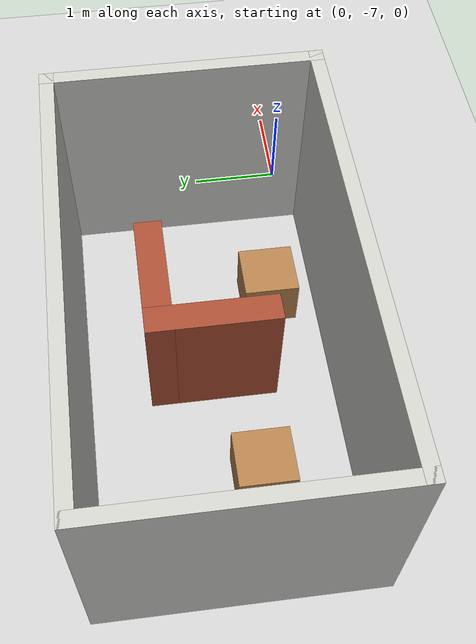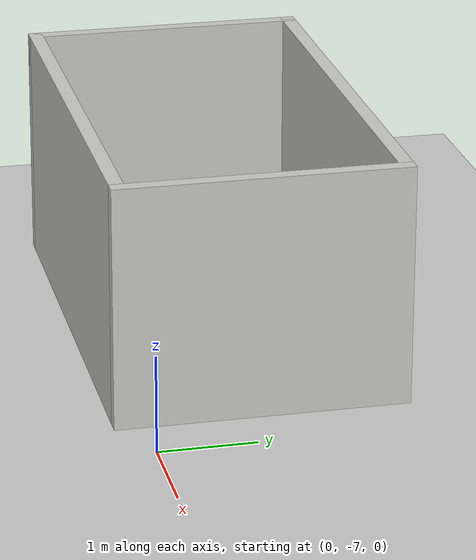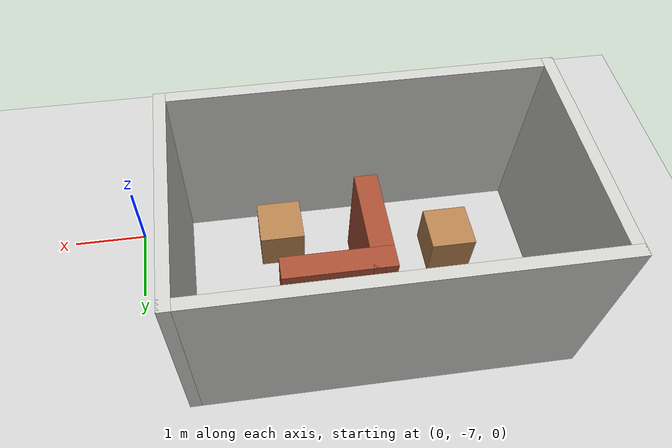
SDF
<sdf version="1.6">
 <world name="default">
  <light name="sun" type="directional">
   <pose>0 0 10 0 -0 0</pose>
   <diffuse>0.8 0.8 0.8 1</diffuse>
   <specular>0.2 0.2 0.2 1</specular>
   <attenuation>
    <range>1000</range>
    <constant>0.9</constant>
    <linear>0.01</linear>
    <quadratic>0.001</quadratic>
   </attenuation>
   <direction>-0.5 0.1 -0.9</direction>
  </light>
  <model name="ground_plane">
   <static>1</static>
   <link name="link">
    <collision name="collision">
     <geometry><plane><normal>0 0 1</normal><size>100 100</size></plane></geometry>
     <surface><friction><ode><mu>100</mu><mu2>50</mu2></ode></friction></surface>
    </collision>
    <visual name="visual">
     <cast_shadows>0</cast_shadows>
     <geometry><plane><normal>0 0 1</normal><size>100 100</size></plane></geometry>
     <material>
      <script><uri>file://media/materials/scripts/gazebo.material</uri><name>Gazebo/Grey</name></script>
     </material>
    </visual>
   </link>
  </model>
  <gravity>0 0 -9.8</gravity>
  <magnetic_field>6e-06 2.3e-05 -4.2e-05</magnetic_field>
  <atmosphere type="adiabatic"/>
  <physics name="default_physics" default="0" type="ode">
   <max_step_size>0.001</max_step_size>
   <real_time_factor>1</real_time_factor>
   <real_time_update_rate>1000</real_time_update_rate>
  </physics>
  <scene><ambient>0.4 0.4 0.4 1</ambient><background>0.7 0.7 0.7 1</background><shadows>1</shadows></scene>
  <spherical_coordinates>
   <surface_model>EARTH_WGS84</surface_model>
   <latitude_deg>0</latitude_deg>
   <longitude_deg>0</longitude_deg>
   <elevation>0</elevation>
   <heading_deg>0</heading_deg>
  </spherical_coordinates>
  <model name="env7">
   <pose>-3.0605 -5.811 0 0 -0 0</pose>
   <link name="Wall_18">
    <collision name="Wall_18_Collision">
     <geometry><box><size>3 0.15 2.5</size></box></geometry>
     <pose>0 0 1.25 0 -0 0</pose>
    </collision>
    <visual name="Wall_18_Visual">
     <pose>0 0 1.25 0 -0 0</pose>
     <geometry><box><size>3 0.15 2.5</size></box></geometry>
     <material>
      <script><uri>file://media/materials/scripts/gazebo.material</uri><name>Gazebo/CeilingTiled</name></script>
      <ambient>0.760784 0.662745 0.627451 1</ambient>
     </material>
     <meta><layer>0</layer></meta>
    </visual>
    <pose>-2.4255 0 0 0 0 -1.5708</pose>
   </link>
   <link name="Wall_19">
    <collision name="Wall_19_Collision">
     <geometry><box><size>5 0.15 2.5</size></box></geometry>
     <pose>0 0 1.25 0 -0 0</pose>
    </collision>
    <visual name="Wall_19_Visual">
     <pose>0 0 1.25 0 -0 0</pose>
     <geometry><box><size>5 0.15 2.5</size></box></geometry>
     <material>
      <script><uri>file://media/materials/scripts/gazebo.material</uri><name>Gazebo/CeilingTiled</name></script>
      <ambient>0.760784 0.662745 0.627451 1</ambient>
     </material>
     <meta><layer>0</layer></meta>
    </visual>
    <pose>0 -1.425 0 0 -0 0</pose>
   </link>
   <link name="Wall_20">
    <collision name="Wall_20_Collision">
     <geometry><box><size>3 0.15 2.5</size></box></geometry>
     <pose>0 0 1.25 0 -0 0</pose>
    </collision>
    <visual name="Wall_20_Visual">
     <pose>0 0 1.25 0 -0 0</pose>
     <geometry><box><size>3 0.15 2.5</size></box></geometry>
     <material>
      <script><uri>file://media/materials/scripts/gazebo.material</uri><name>Gazebo/CeilingTiled</name></script>
      <ambient>0.760784 0.662745 0.627451 1</ambient>
     </material>
     <meta><layer>0</layer></meta>
    </visual>
    <pose>2.4255 0 0 0 -0 1.5708</pose>
   </link>
   <link name="Wall_21">
    <collision name="Wall_21_Collision">
     <geometry><box><size>5 0.15 2.5</size></box></geometry>
     <pose>0 0 1.25 0 -0 0</pose>
    </collision>
    <visual name="Wall_21_Visual">
     <pose>0 0 1.25 0 -0 0</pose>
     <geometry><box><size>5 0.15 2.5</size></box></geometry>
     <material>
      <script><uri>file://media/materials/scripts/gazebo.material</uri><name>Gazebo/CeilingTiled</name></script>
      <ambient>0.760784 0.662745 0.627451 1</ambient>
     </material>
     <meta><layer>0</layer></meta>
    </visual>
    <pose>0 1.425 0 0 -0 3.14159</pose>
   </link>
   <link name="Wall_25">
    <collision name="Wall_25_Collision">
     <geometry><box><size>0.61 0.6 0.6</size></box></geometry>
     <pose>0 0 0.3 0 -0 0</pose>
    </collision>
    <visual name="Wall_25_Visual">
     <pose>0 0 0.3 0 -0 0</pose>
     <geometry><box><size>0.61 0.6 0.6</size></box></geometry>
     <material>
      <script><uri>file://media/materials/scripts/gazebo.material</uri><name>Gazebo/Wood</name></script>
      <ambient>1 1 1 1</ambient>
     </material>
     <meta><layer>0</layer></meta>
    </visual>
    <pose>-1.22136 -0.386987 0 0 0 -1.5708</pose>
   </link>
   <link name="Wall_27">
    <collision name="Wall_27_Collision">
     <geometry><box><size>0.61 0.6 0.6</size></box></geometry>
     <pose>0 0 0.3 0 -0 0</pose>
    </collision>
    <visual name="Wall_27_Visual">
     <pose>0 0 0.3 0 -0 0</pose>
     <geometry><box><size>0.61 0.6 0.6</size></box></geometry>
     <material>
      <script><uri>file://media/materials/scripts/gazebo.material</uri><name>Gazebo/Wood</name></script>
      <ambient>1 1 1 1</ambient>
     </material>
     <meta><layer>0</layer></meta>
    </visual>
    <pose>1.08529 -0.794049 0 0 0 -1.5708</pose>
   </link>
   <link name="Wall_34">
    <collision name="Wall_34_Collision">
     <geometry><box><size>1.4 0.3 1.5</size></box></geometry>
     <pose>0 0 0.75 0 -0 0</pose>
    </collision>
    <visual name="Wall_34_Visual">
     <pose>0 0 0.75 0 -0 0</pose>
     <geometry><box><size>1.4 0.3 1.5</size></box></geometry>
     <material>
      <script><uri>file://media/materials/scripts/gazebo.material</uri><name>Gazebo/Bricks</name></script>
      <ambient>1 1 1 1</ambient>
     </material>
     <meta><layer>0</layer></meta>
    </visual>
    <pose>-0.0365 -0.013 0 0 -0 1.5708</pose>
   </link>
   <link name="Wall_36">
    <collision name="Wall_36_Collision">
     <geometry><box><size>1.40005 0.3 1.5</size></box></geometry>
     <pose>0 0 0.75 0 -0 0</pose>
    </collision>
    <visual name="Wall_36_Visual">
     <pose>0 0 0.75 0 -0 0</pose>
     <geometry><box><size>1.40005 0.3 1.5</size></box></geometry>
     <material>
      <script><uri>file://media/materials/scripts/gazebo.material</uri><name>Gazebo/Bricks</name></script>
      <ambient>1 1 1 1</ambient>
     </material>
     <meta><layer>0</layer></meta>
    </visual>
    <pose>0.5135 0.537 0 0 -0 0</pose>
   </link>
   <static>1</static>
  </model>
 </world>
</sdf>
